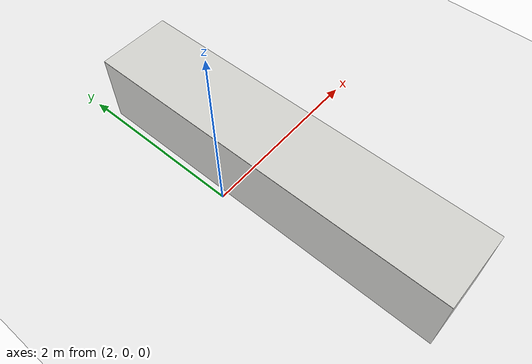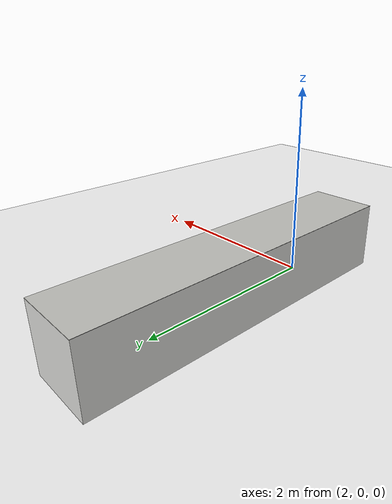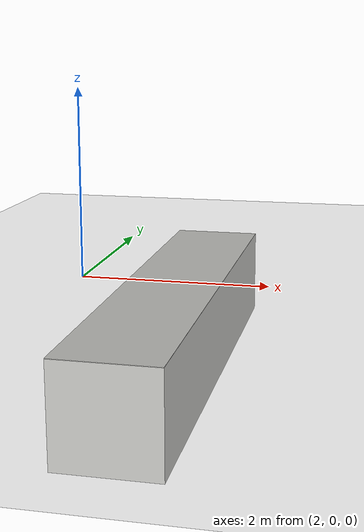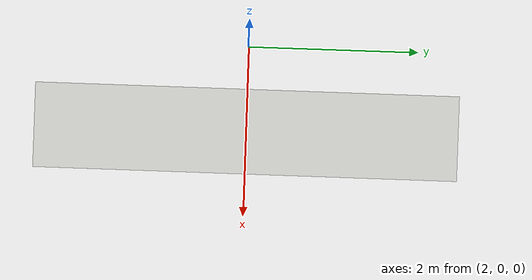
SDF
<?xml version="1.0" ?>
<sdf version="1.6">
  <world name="pit_test_world">
    <include><uri>model://sun</uri></include>
    <include><uri>model://ground_plane</uri></include>

    <!-- A trench in front of the robot -->
    <model name='trench'>
      <static>true</static>
      <pose>3 0 -0.5 0 0 0</pose>
      <link name='link'>
        <collision name='collision'>
          <geometry><box><size>1 5 1</size></box></geometry>
        </collision>
        <visual name='visual'>
          <geometry><box><size>1 5 1</size></box></geometry>
          <material><script><uri>file://media/materials/scripts/gazebo.material</uri><name>Gazebo/CeilingTiled</name></script></material>
        </visual>
      </link>
    </model>
  </world>
</sdf>
